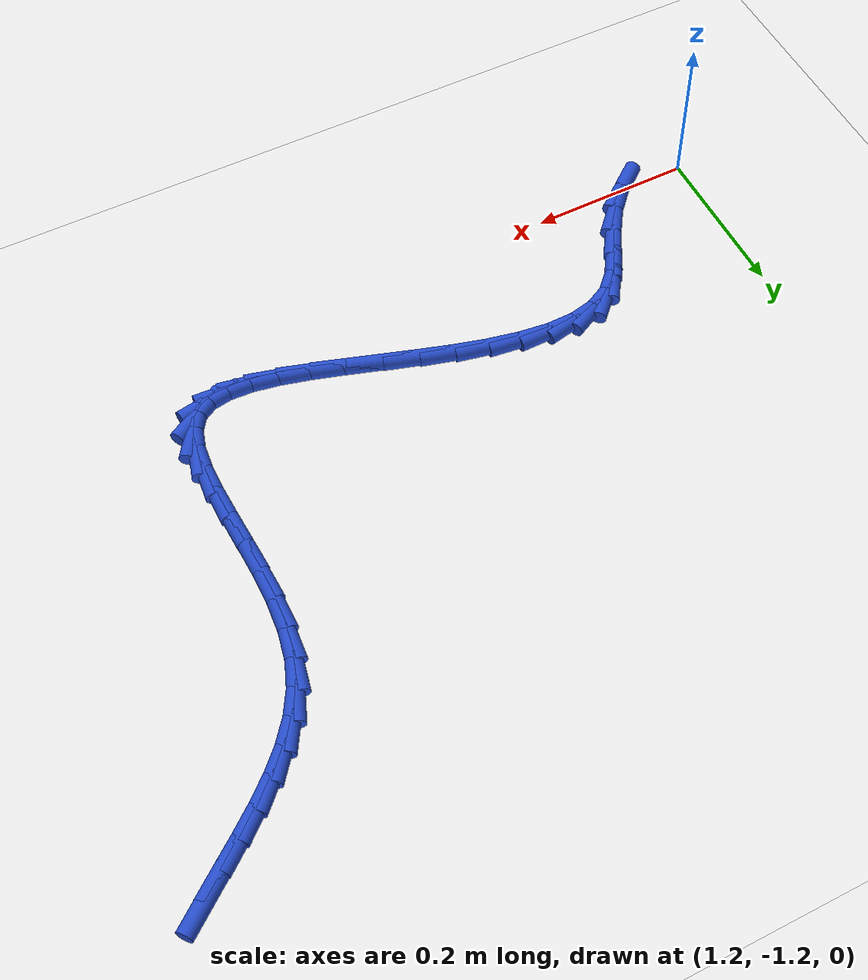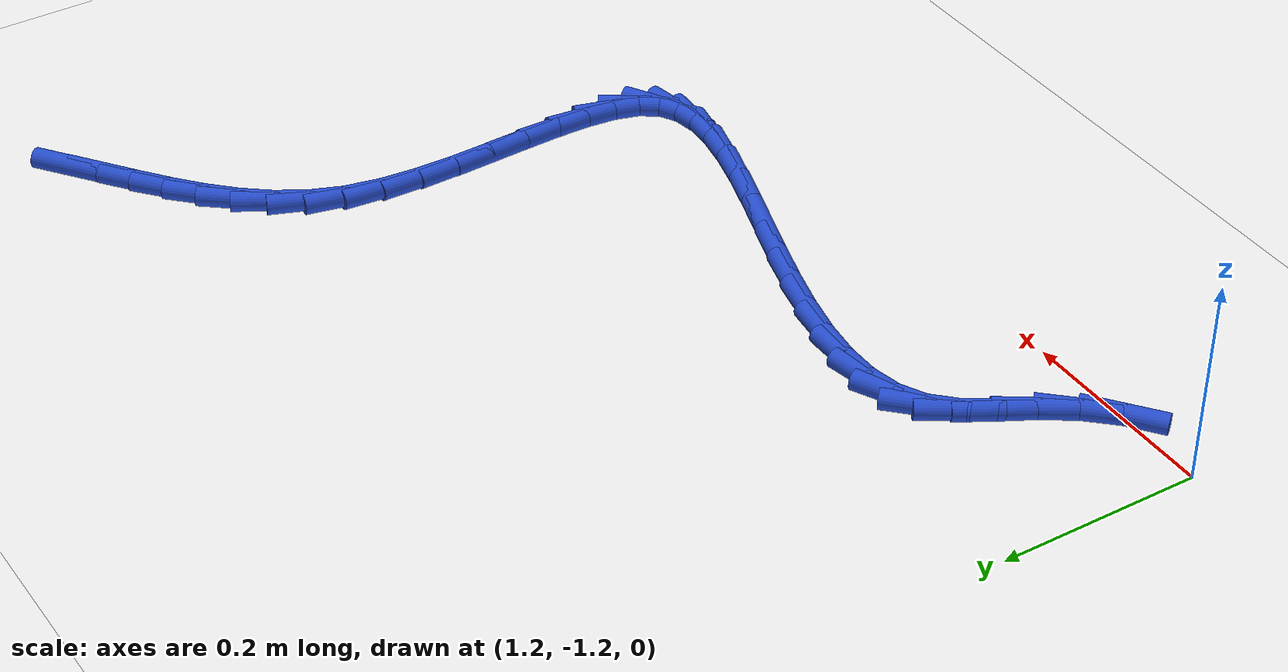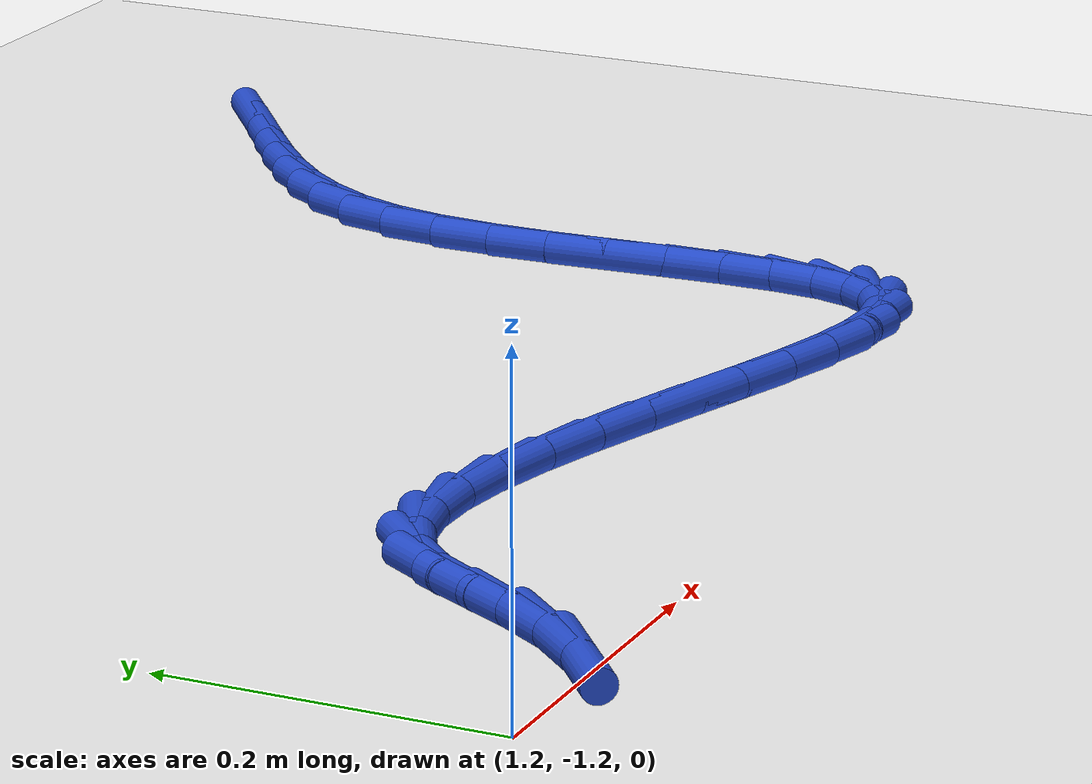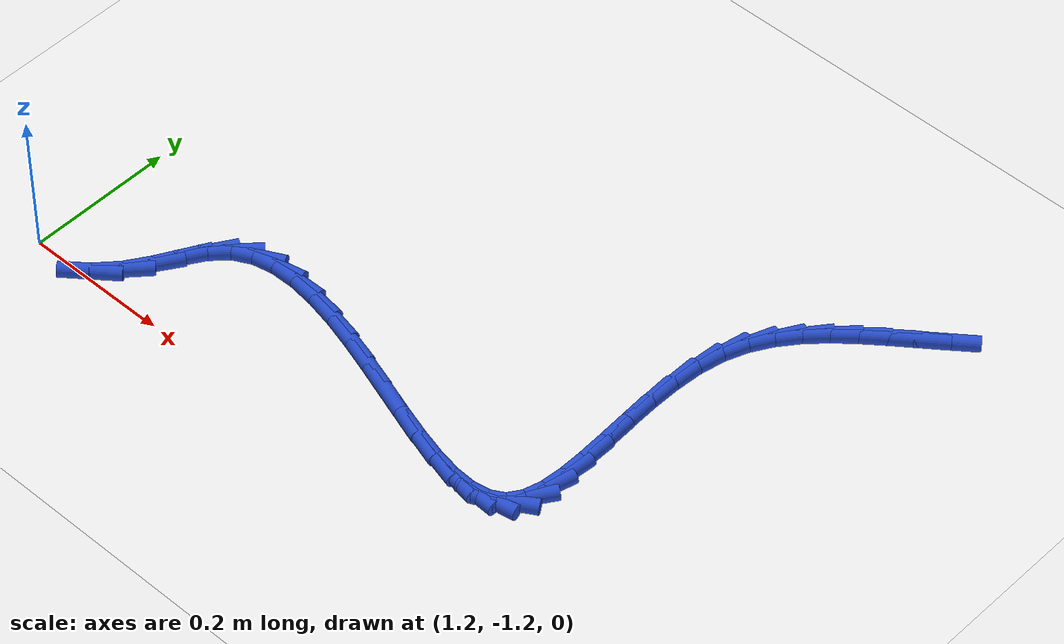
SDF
<sdf version="1.6">
 <world name="default">
  <model name="ground_plane">
   <static>1</static>
   <link name="link">
    <collision name="collision">
     <geometry><plane><normal>0 0 1</normal><size>100 100</size></plane></geometry>
     <surface><friction><ode><mu>100</mu><mu2>50</mu2></ode></friction></surface>
    </collision>
    <visual name="visual">
     <cast_shadows>0</cast_shadows>
     <geometry><plane><normal>0 0 1</normal><size>100 100</size></plane></geometry>
     <material>
      <script><uri>file://media/materials/scripts/gazebo.material</uri><name>Gazebo/WhiteGlow</name></script>
     </material>
    </visual>
   </link>
  </model>
  <model name="line">
   <link name="link_134">
    <pose>2.1045380380813854 -0.5820925916703705 0.01 0 1.57 0.6585379776556728</pose>
    <collision name="collision">
     <geometry><cylinder><radius>0.01</radius><length>0.08</length></cylinder></geometry>
    </collision>
    <visual name="visual">
     <material>
      <script><name>Gazebo/Blue</name><uri>file://media/materials/scripts/gazebo.material</uri></script>
     </material>
     <geometry><cylinder><radius>0.01</radius><length>0.08</length></cylinder></geometry>
    </visual>
   </link>
   <link name="link_135">
    <pose>2.076777145010749 -0.603572996630751 0.01 0 1.57 0.6531200623871575</pose>
    <collision name="collision">
     <geometry><cylinder><radius>0.01</radius><length>0.08</length></cylinder></geometry>
    </collision>
    <visual name="visual">
     <material>
      <script><name>Gazebo/Blue</name><uri>file://media/materials/scripts/gazebo.material</uri></script>
     </material>
     <geometry><cylinder><radius>0.01</radius><length>0.08</length></cylinder></geometry>
    </visual>
   </link>
   <link name="link_136">
    <pose>2.0490038643424695 -0.6248234251621911 0.01 0 1.57 0.6737112024204709</pose>
    <collision name="collision">
     <geometry><cylinder><radius>0.01</radius><length>0.08</length></cylinder></geometry>
    </collision>
    <visual name="visual">
     <material>
      <script><name>Gazebo/Blue</name><uri>file://media/materials/scripts/gazebo.material</uri></script>
     </material>
     <geometry><cylinder><radius>0.01</radius><length>0.08</length></cylinder></geometry>
    </visual>
   </link>
   <link name="link_137">
    <pose>2.0219573762318355 -0.6464149778442607 0.01 0 1.57 0.7214989333020381</pose>
    <collision name="collision">
     <geometry><cylinder><radius>0.01</radius><length>0.08</length></cylinder></geometry>
    </collision>
    <visual name="visual">
     <material>
      <script><name>Gazebo/Blue</name><uri>file://media/materials/scripts/gazebo.material</uri></script>
     </material>
     <geometry><cylinder><radius>0.01</radius><length>0.08</length></cylinder></geometry>
    </visual>
   </link>
   <link name="link_138">
    <pose>1.996376860834142 -0.6689187552565287 0.01 0 1.57 0.7983135843861919</pose>
    <collision name="collision">
     <geometry><cylinder><radius>0.01</radius><length>0.08</length></cylinder></geometry>
    </collision>
    <visual name="visual">
     <material>
      <script><name>Gazebo/Blue</name><uri>file://media/materials/scripts/gazebo.material</uri></script>
     </material>
     <geometry><cylinder><radius>0.01</radius><length>0.08</length></cylinder></geometry>
    </visual>
   </link>
   <link name="link_139">
    <pose>1.9730014983046789 -0.6929058579785641 0.01 0 1.57 0.9055438470624722</pose>
    <collision name="collision">
     <geometry><cylinder><radius>0.01</radius><length>0.08</length></cylinder></geometry>
    </collision>
    <visual name="visual">
     <material>
      <script><name>Gazebo/Blue</name><uri>file://media/materials/scripts/gazebo.material</uri></script>
     </material>
     <geometry><cylinder><radius>0.01</radius><length>0.08</length></cylinder></geometry>
    </visual>
   </link>
   <link name="link_140">
    <pose>1.9525704687987386 -0.7189473865899365 0.01 0 1.57 1.0420696970791368</pose>
    <collision name="collision">
     <geometry><cylinder><radius>0.01</radius><length>0.08</length></cylinder></geometry>
    </collision>
    <visual name="visual">
     <material>
      <script><name>Gazebo/Blue</name><uri>file://media/materials/scripts/gazebo.material</uri></script>
     </material>
     <geometry><cylinder><radius>0.01</radius><length>0.08</length></cylinder></geometry>
    </visual>
   </link>
   <link name="link_141">
    <pose>1.935822952471615 -0.7476144416702136 0.01 0 1.57 1.201722139064367</pose>
    <collision name="collision">
     <geometry><cylinder><radius>0.01</radius><length>0.08</length></cylinder></geometry>
    </collision>
    <visual name="visual">
     <material>
      <script><name>Gazebo/Blue</name><uri>file://media/materials/scripts/gazebo.material</uri></script>
     </material>
     <geometry><cylinder><radius>0.01</radius><length>0.08</length></cylinder></geometry>
    </visual>
   </link>
   <link name="link_142">
    <pose>1.9234981294785987 -0.7794781237989654 0.01 0 1.57 1.3635960578718354</pose>
    <collision name="collision">
     <geometry><cylinder><radius>0.01</radius><length>0.08</length></cylinder></geometry>
    </collision>
    <visual name="visual">
     <material>
      <script><name>Gazebo/Blue</name><uri>file://media/materials/scripts/gazebo.material</uri></script>
     </material>
     <geometry><cylinder><radius>0.01</radius><length>0.08</length></cylinder></geometry>
    </visual>
   </link>
   <link name="link_143">
    <pose>1.9160602682824763 -0.814859905417257 0.01 0 1.57 1.483107653882075</pose>
    <collision name="collision">
     <geometry><cylinder><radius>0.01</radius><length>0.08</length></cylinder></geometry>
    </collision>
    <visual name="visual">
     <material>
      <script><name>Gazebo/Blue</name><uri>file://media/materials/scripts/gazebo.material</uri></script>
     </material>
     <geometry><cylinder><radius>0.01</radius><length>0.08</length></cylinder></geometry>
    </visual>
   </link>
   <link name="link_144">
    <pose>1.9127128078110922 -0.8529363875825204 0.01 0 1.57 1.5603256561104133</pose>
    <collision name="collision">
     <geometry><cylinder><radius>0.01</radius><length>0.08</length></cylinder></geometry>
    </collision>
    <visual name="visual">
     <material>
      <script><name>Gazebo/Blue</name><uri>file://media/materials/scripts/gazebo.material</uri></script>
     </material>
     <geometry><cylinder><radius>0.01</radius><length>0.08</length></cylinder></geometry>
    </visual>
   </link>
   <link name="link_145">
    <pose>1.9122979471167612 -0.8925561546103001 0.01 0 1.57 -1.5368215623033468</pose>
    <collision name="collision">
     <geometry><cylinder><radius>0.01</radius><length>0.08</length></cylinder></geometry>
    </collision>
    <visual name="visual">
     <material>
      <script><name>Gazebo/Blue</name><uri>file://media/materials/scripts/gazebo.material</uri></script>
     </material>
     <geometry><cylinder><radius>0.01</radius><length>0.08</length></cylinder></geometry>
    </visual>
   </link>
   <link name="link_146">
    <pose>1.9136578553933112 -0.9325677637037327 0.01 0 1.57 -1.5204759052901662</pose>
    <collision name="collision">
     <geometry><cylinder><radius>0.01</radius><length>0.08</length></cylinder></geometry>
    </collision>
    <visual name="visual">
     <material>
      <script><name>Gazebo/Blue</name><uri>file://media/materials/scripts/gazebo.material</uri></script>
     </material>
     <geometry><cylinder><radius>0.01</radius><length>0.08</length></cylinder></geometry>
    </visual>
   </link>
   <link name="link_147">
    <pose>1.915634701834567 -0.971819772065953 0.01 0 1.57 -1.5323600784717772</pose>
    <collision name="collision">
     <geometry><cylinder><radius>0.01</radius><length>0.08</length></cylinder></geometry>
    </collision>
    <visual name="visual">
     <material>
      <script><name>Gazebo/Blue</name><uri>file://media/materials/scripts/gazebo.material</uri></script>
     </material>
     <geometry><cylinder><radius>0.01</radius><length>0.08</length></cylinder></geometry>
    </visual>
   </link>
   <link name="link_148">
    <pose>1.9170706556343562 -1.0091607369000972 0.01 0 1.57 1.5631307444126836</pose>
    <collision name="collision">
     <geometry><cylinder><radius>0.01</radius><length>0.08</length></cylinder></geometry>
    </collision>
    <visual name="visual">
     <material>
      <script><name>Gazebo/Blue</name><uri>file://media/materials/scripts/gazebo.material</uri></script>
     </material>
     <geometry><cylinder><radius>0.01</radius><length>0.08</length></cylinder></geometry>
    </visual>
   </link>
   <link name="link_149">
    <pose>1.9168078859865043 -1.0434392154092986 0.01 0 1.57 1.4674120220328035</pose>
    <collision name="collision">
     <geometry><cylinder><radius>0.01</radius><length>0.08</length></cylinder></geometry>
    </collision>
    <visual name="visual">
     <material>
      <script><name>Gazebo/Blue</name><uri>file://media/materials/scripts/gazebo.material</uri></script>
     </material>
     <geometry><cylinder><radius>0.01</radius><length>0.08</length></cylinder></geometry>
    </visual>
   </link>
   <link name="link_150">
    <pose>1.913688562084839 -1.0735037647966938 0.01 0 1.57 1.289624250891067</pose>
    <collision name="collision">
     <geometry><cylinder><radius>0.01</radius><length>0.08</length></cylinder></geometry>
    </collision>
    <visual name="visual">
     <material>
      <script><name>Gazebo/Blue</name><uri>file://media/materials/scripts/gazebo.material</uri></script>
     </material>
     <geometry><cylinder><radius>0.01</radius><length>0.08</length></cylinder></geometry>
    </visual>
   </link>
   <link name="link_151">
    <pose>1.9065548531231857 -1.0982029422654176 0.01 0 1.57 0.9758072730319945</pose>
    <collision name="collision">
     <geometry><cylinder><radius>0.01</radius><length>0.08</length></cylinder></geometry>
    </collision>
    <visual name="visual">
     <material>
      <script><name>Gazebo/Blue</name><uri>file://media/materials/scripts/gazebo.material</uri></script>
     </material>
     <geometry><cylinder><radius>0.01</radius><length>0.08</length></cylinder></geometry>
    </visual>
   </link>
   <link name="link_152">
    <pose>1.894248928295371 -1.1163853050186052 0.01 0 1.57 0.5347687280137915</pose>
    <collision name="collision">
     <geometry><cylinder><radius>0.01</radius><length>0.08</length></cylinder></geometry>
    </collision>
    <visual name="visual">
     <material>
      <script><name>Gazebo/Blue</name><uri>file://media/materials/scripts/gazebo.material</uri></script>
     </material>
     <geometry><cylinder><radius>0.01</radius><length>0.08</length></cylinder></geometry>
    </visual>
   </link>
   <link name="link_153">
    <pose>1.8759163308367734 -1.127244451129189 0.01 0 1.57 0.17368466999871526</pose>
    <collision name="collision">
     <geometry><cylinder><radius>0.01</radius><length>0.08</length></cylinder></geometry>
    </collision>
    <visual name="visual">
     <material>
      <script><name>Gazebo/Blue</name><uri>file://media/materials/scripts/gazebo.material</uri></script>
     </material>
     <geometry><cylinder><radius>0.01</radius><length>0.08</length></cylinder></geometry>
    </visual>
   </link>
   <link name="link_154">
    <pose>1.8519931943420165 -1.131441824824067 0.01 0 1.57 -0.04912440224598866</pose>
    <collision name="collision">
     <geometry><cylinder><radius>0.01</radius><length>0.08</length></cylinder></geometry>
    </collision>
    <visual name="visual">
     <material>
      <script><name>Gazebo/Blue</name><uri>file://media/materials/scripts/gazebo.material</uri></script>
     </material>
     <geometry><cylinder><radius>0.01</radius><length>0.08</length></cylinder></geometry>
    </visual>
   </link>
   <link name="link_155">
    <pose>1.8232587824276458 -1.1300291274550096 0.01 0 1.57 -0.1802532634698968</pose>
    <collision name="collision">
     <geometry><cylinder><radius>0.01</radius><length>0.08</length></cylinder></geometry>
    </collision>
    <visual name="visual">
     <material>
      <script><name>Gazebo/Blue</name><uri>file://media/materials/scripts/gazebo.material</uri></script>
     </material>
     <geometry><cylinder><radius>0.01</radius><length>0.08</length></cylinder></geometry>
    </visual>
   </link>
   <link name="link_156">
    <pose>1.790492361502338 -1.124058063549405 0.01 0 1.57 -0.2572977153999106</pose>
    <collision name="collision">
     <geometry><cylinder><radius>0.01</radius><length>0.08</length></cylinder></geometry>
    </collision>
    <visual name="visual">
     <material>
      <script><name>Gazebo/Blue</name><uri>file://media/materials/scripts/gazebo.material</uri></script>
     </material>
     <geometry><cylinder><radius>0.01</radius><length>0.08</length></cylinder></geometry>
    </visual>
   </link>
   <link name="link_157">
    <pose>1.7544731979747703 -1.1145803376346433 0.01 0 1.57 -0.3006048424633602</pose>
    <collision name="collision">
     <geometry><cylinder><radius>0.01</radius><length>0.08</length></cylinder></geometry>
    </collision>
    <visual name="visual">
     <material>
      <script><name>Gazebo/Blue</name><uri>file://media/materials/scripts/gazebo.material</uri></script>
     </material>
     <geometry><cylinder><radius>0.01</radius><length>0.08</length></cylinder></geometry>
    </visual>
   </link>
   <link name="link_158">
    <pose>1.7159805582536236 -1.1026476542381134 0.01 0 1.57 -0.32041339945349395</pose>
    <collision name="collision">
     <geometry><cylinder><radius>0.01</radius><length>0.08</length></cylinder></geometry>
    </collision>
    <visual name="visual">
     <material>
      <script><name>Gazebo/Blue</name><uri>file://media/materials/scripts/gazebo.material</uri></script>
     </material>
     <geometry><cylinder><radius>0.01</radius><length>0.08</length></cylinder></geometry>
    </visual>
   </link>
   <link name="link_159">
    <pose>1.675793708747575 -1.0893117178872038 0.01 0 1.57 -0.3214633967556501</pose>
    <collision name="collision">
     <geometry><cylinder><radius>0.01</radius><length>0.08</length></cylinder></geometry>
    </collision>
    <visual name="visual">
     <material>
      <script><name>Gazebo/Blue</name><uri>file://media/materials/scripts/gazebo.material</uri></script>
     </material>
     <geometry><cylinder><radius>0.01</radius><length>0.08</length></cylinder></geometry>
    </visual>
   </link>
   <link name="link_160">
    <pose>1.6346919158653017 -1.0756242331093044 0.01 0 1.57 -0.3051062380672263</pose>
    <collision name="collision">
     <geometry><cylinder><radius>0.01</radius><length>0.08</length></cylinder></geometry>
    </collision>
    <visual name="visual">
     <material>
      <script><name>Gazebo/Blue</name><uri>file://media/materials/scripts/gazebo.material</uri></script>
     </material>
     <geometry><cylinder><radius>0.01</radius><length>0.08</length></cylinder></geometry>
    </visual>
   </link>
   <link name="link_161">
    <pose>1.5934544460154831 -1.0626369044318038 0.01 0 1.57 -0.27001787916025466</pose>
    <collision name="collision">
     <geometry><cylinder><radius>0.01</radius><length>0.08</length></cylinder></geometry>
    </collision>
    <visual name="visual">
     <material>
      <script><name>Gazebo/Blue</name><uri>file://media/materials/scripts/gazebo.material</uri></script>
     </material>
     <geometry><cylinder><radius>0.01</radius><length>0.08</length></cylinder></geometry>
    </visual>
   </link>
   <link name="link_162">
    <pose>1.552860565606796 -1.051401436382091 0.01 0 1.57 -0.21202339413401824</pose>
    <collision name="collision">
     <geometry><cylinder><radius>0.01</radius><length>0.08</length></cylinder></geometry>
    </collision>
    <visual name="visual">
     <material>
      <script><name>Gazebo/Blue</name><uri>file://media/materials/scripts/gazebo.material</uri></script>
     </material>
     <geometry><cylinder><radius>0.01</radius><length>0.08</length></cylinder></geometry>
    </visual>
   </link>
   <link name="link_163">
    <pose>1.5136895410479208 -1.0429695334875555 0.01 0 1.57 -0.123170167910777</pose>
    <collision name="collision">
     <geometry><cylinder><radius>0.01</radius><length>0.08</length></cylinder></geometry>
    </collision>
    <visual name="visual">
     <material>
      <script><name>Gazebo/Blue</name><uri>file://media/materials/scripts/gazebo.material</uri></script>
     </material>
     <geometry><cylinder><radius>0.01</radius><length>0.08</length></cylinder></geometry>
    </visual>
   </link>
   <link name="link_164">
    <pose>1.4767206387475342 -1.038392900275586 0.01 0 1.57 0.009719175103194038</pose>
    <collision name="collision">
     <geometry><cylinder><radius>0.01</radius><length>0.08</length></cylinder></geometry>
    </collision>
    <visual name="visual">
     <material>
      <script><name>Gazebo/Blue</name><uri>file://media/materials/scripts/gazebo.material</uri></script>
     </material>
     <geometry><cylinder><radius>0.01</radius><length>0.08</length></cylinder></geometry>
    </visual>
   </link>
   <link name="link_165">
    <pose>1.4427331251143147 -1.0387232412735723 0.01 0 1.57 0.20513403124900106</pose>
    <collision name="collision">
     <geometry><cylinder><radius>0.01</radius><length>0.08</length></cylinder></geometry>
    </collision>
    <visual name="visual">
     <material>
      <script><name>Gazebo/Blue</name><uri>file://media/materials/scripts/gazebo.material</uri></script>
     </material>
     <geometry><cylinder><radius>0.01</radius><length>0.08</length></cylinder></geometry>
    </visual>
   </link>
   <link name="link_166">
    <pose>1.41250626655694 -1.0450122610089028 0.01 0 1.57 0.47774629934696206</pose>
    <collision name="collision">
     <geometry><cylinder><radius>0.01</radius><length>0.08</length></cylinder></geometry>
    </collision>
    <visual name="visual">
     <material>
      <script><name>Gazebo/Blue</name><uri>file://media/materials/scripts/gazebo.material</uri></script>
     </material>
     <geometry><cylinder><radius>0.01</radius><length>0.08</length></cylinder></geometry>
    </visual>
   </link>
   <link name="link_167">
    <pose>1.3868193294840896 -1.0583116640089671 0.01 0 1.57 0.7993874101142686</pose>
    <collision name="collision">
     <geometry><cylinder><radius>0.01</radius><length>0.08</length></cylinder></geometry>
    </collision>
    <visual name="visual">
     <material>
      <script><name>Gazebo/Blue</name><uri>file://media/materials/scripts/gazebo.material</uri></script>
     </material>
     <geometry><cylinder><radius>0.01</radius><length>0.08</length></cylinder></geometry>
    </visual>
   </link>
   <link name="link_168">
    <pose>1.3662508640701687 -1.0794638073880352 0.01 0 1.57 1.0116125431098542</pose>
    <collision name="collision">
     <geometry><cylinder><radius>0.01</radius><length>0.08</length></cylinder></geometry>
    </collision>
    <visual name="visual">
     <material>
      <script><name>Gazebo/Blue</name><uri>file://media/materials/scripts/gazebo.material</uri></script>
     </material>
     <geometry><cylinder><radius>0.01</radius><length>0.08</length></cylinder></geometry>
    </visual>
   </link>
   <link name="link_169">
    <pose>1.3490757391436479 -1.1069083042463241 0.01 0 1.57 1.0647832292304455</pose>
    <collision name="collision">
     <geometry><cylinder><radius>0.01</radius><length>0.08</length></cylinder></geometry>
    </collision>
    <visual name="visual">
     <material>
      <script><name>Gazebo/Blue</name><uri>file://media/materials/scripts/gazebo.material</uri></script>
     </material>
     <geometry><cylinder><radius>0.01</radius><length>0.08</length></cylinder></geometry>
    </visual>
   </link>
   <link name="link_170">
    <pose>1.332096534005458 -1.1375491669137938 0.01 0 1.57 0.9935282764612552</pose>
    <collision name="collision">
     <geometry><cylinder><radius>0.01</radius><length>0.08</length></cylinder></geometry>
    </collision>
    <visual name="visual">
     <material>
      <script><name>Gazebo/Blue</name><uri>file://media/materials/scripts/gazebo.material</uri></script>
     </material>
     <geometry><cylinder><radius>0.01</radius><length>0.08</length></cylinder></geometry>
    </visual>
   </link>
   <link name="link_171">
    <pose>1.3120919092776109 -1.1682654604929112 0.01 0 1.57 0.8310486337342113</pose>
    <collision name="collision">
     <geometry><cylinder><radius>0.01</radius><length>0.08</length></cylinder></geometry>
    </collision>
    <visual name="visual">
     <material>
      <script><name>Gazebo/Blue</name><uri>file://media/materials/scripts/gazebo.material</uri></script>
     </material>
     <geometry><cylinder><radius>0.01</radius><length>0.08</length></cylinder></geometry>
    </visual>
   </link>
   <link name="link_172">
    <pose>1.2864622311844662 -1.1963488710824228 0.01 0 1.57 0.6724773687670006</pose>
    <collision name="collision">
     <geometry><cylinder><radius>0.01</radius><length>0.08</length></cylinder></geometry>
    </collision>
    <visual name="visual">
     <material>
      <script><name>Gazebo/Blue</name><uri>file://media/materials/scripts/gazebo.material</uri></script>
     </material>
     <geometry><cylinder><radius>0.01</radius><length>0.08</length></cylinder></geometry>
    </visual>
   </link>
  </model>
 </world>
</sdf>
